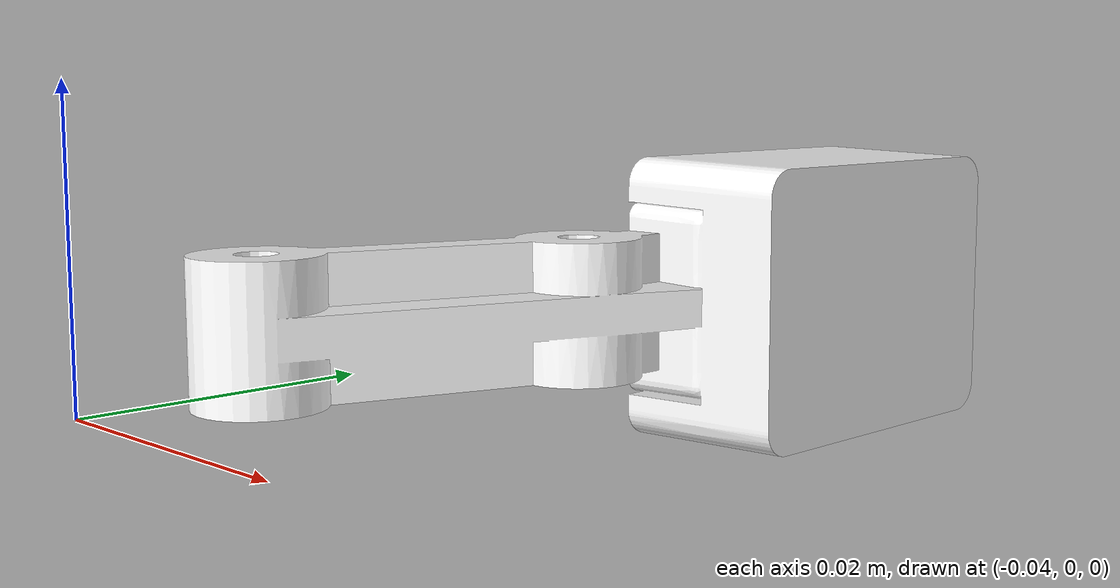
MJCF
<mujoco model="gripper_left1">
  <default>
    <default class="visual">
      <geom group="1" type="mesh" contype="0" conaffinity="0"/>
    </default>
    <default class="collision">
      <geom group="0" type="mesh"/>
    </default>
  </default>
  <asset>
    <material name="material_0" specular="1.0" shininess="0.0" rgba="1.000000 1.000000 1.000000 1.000000"/>
    <mesh file="gripper_left1.obj"/>
  </asset>
  <worldbody>
    <body name="gripper_left1">
      <geom material="material_0" mesh="gripper_left1" class="visual"/>
      <geom mesh="gripper_left1" class="collision"/>
    </body>
  </worldbody>
</mujoco>
